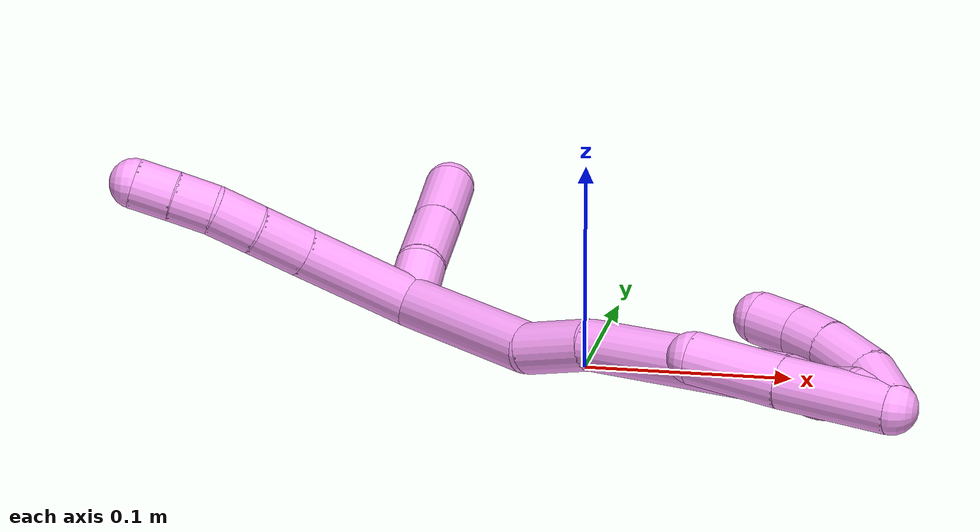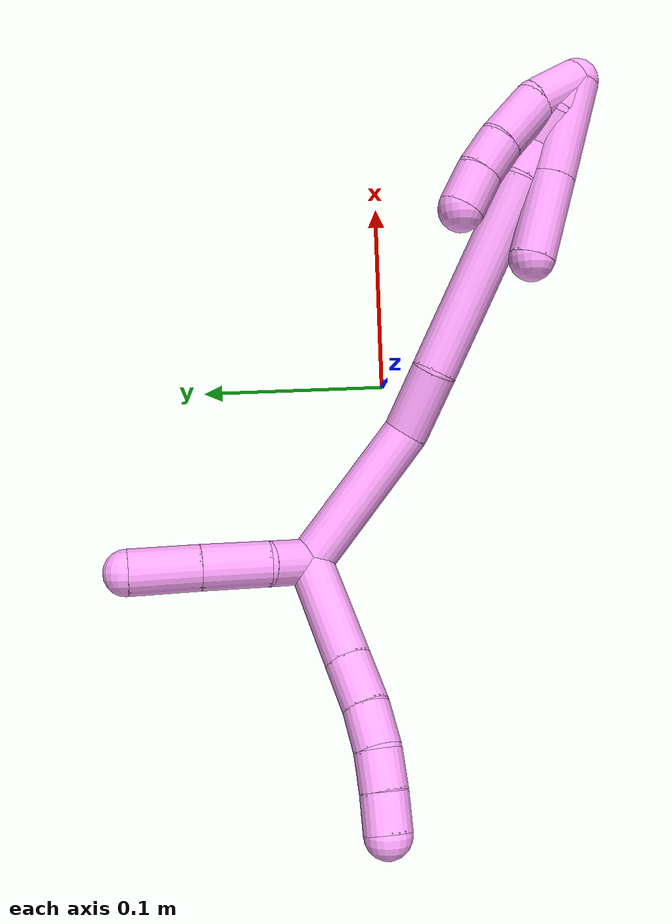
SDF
<sdf version="1.7">
 <world name="default">
  <model name="photoneo_s_sensor">
   <static>1</static>
   <pose>0 0 2 1.57079 1.57079 3.14159</pose>
   <link name="link">
    <inertial><mass>0.1</mass></inertial>
    <sensor name="sensor" type="depth">
     <update_rate>30</update_rate>
     <camera>
      <horizontal_fov>1.22</horizontal_fov>
      <image><width>1920</width><height>1200</height><format>B8G8R8</format></image>
      <clip><near>0.1</near><far>4</far></clip>
      <depth_camera><output>points</output></depth_camera>
     </camera>
     <plugin name="camera_plugin" filename="libgazebo_ros_depth_camera.so">
      <baseline>0.2</baseline>
      <alwaysOn>1</alwaysOn>
      <updateRate>0.0</updateRate>
      <cameraName>camera_ir</cameraName>
      <imageTopicName>/camera/color/image_raw</imageTopicName>
      <cameraInfoTopicName>/camera/color/camera_info</cameraInfoTopicName>
      <depthImageTopicName>/camera/depth/image_raw</depthImageTopicName>
      <depthImageCameraInfoTopicName>/camera/depth/camera_info</depthImageCameraInfoTopicName>
      <pointCloudTopicName>/camera/depth/points</pointCloudTopicName>
      <frameName>fr_optical</frameName>
      <pointCloudCutoff>0.1</pointCloudCutoff>
      <pointCloudCutoffMax>2.0</pointCloudCutoffMax>
      <distortionK1>0</distortionK1>
      <distortionK2>0</distortionK2>
      <distortionK3>0</distortionK3>
      <distortionT1>0</distortionT1>
      <distortionT2>0</distortionT2>
      <CxPrime>0</CxPrime>
      <Cx>0</Cx>
      <Cy>0</Cy>
      <focalLength>0</focalLength>
      <hackBaseline>0</hackBaseline>
     </plugin>
    </sensor>
   </link>
  </model>
  <model name="bin">
   <static>1</static>
   <link name="bottom">
    <collision name="collision-bottom">
     <pose>0 0 -0.01 0 -0 0</pose>
     <geometry><box><size>0.8 0.6 0.02</size></box></geometry>
     <surface>
      <friction><ode><mu>100</mu><mu2>100</mu2></ode></friction>
      <contact><collide_bitmask>65535</collide_bitmask></contact>
     </surface>
    </collision>
   </link>
   <link name="west_wall">
    <collision name="collision-west_wall">
     <pose>-0.41 0 0.1 0 -0 0</pose>
     <geometry><box><size>0.02 0.6 0.2</size></box></geometry>
     <surface>
      <friction><ode><mu>100</mu><mu2>100</mu2></ode></friction>
      <contact><collide_bitmask>65535</collide_bitmask></contact>
     </surface>
    </collision>
   </link>
   <link name="east_wall">
    <collision name="collision-east_wall">
     <pose>0.41 0 0.1 0 -0 0</pose>
     <geometry><box><size>0.02 0.6 0.2</size></box></geometry>
     <surface>
      <friction><ode><mu>100</mu><mu2>100</mu2></ode></friction>
      <contact><collide_bitmask>65535</collide_bitmask></contact>
     </surface>
    </collision>
   </link>
   <link name="south_wall">
    <collision name="collision-south_wall">
     <pose>0 -0.31 0.1 0 -0 0</pose>
     <geometry><box><size>0.8 0.02 0.2</size></box></geometry>
     <surface>
      <friction><ode><mu>100</mu><mu2>100</mu2></ode></friction>
      <contact><collide_bitmask>65535</collide_bitmask></contact>
     </surface>
    </collision>
   </link>
   <link name="north_wall">
    <collision name="collision-north_wall">
     <pose>0 0.31 0.1 0 -0 0</pose>
     <geometry><box><size>0.8 0.02 0.2</size></box></geometry>
     <surface>
      <friction><ode><mu>100</mu><mu2>100</mu2></ode></friction>
      <contact><collide_bitmask>65535</collide_bitmask></contact>
     </surface>
    </collision>
   </link>
  </model>
  <model name="4">
   <static>0</static>
   <link name="4">
    <collision name="collision-cylinder-e_1_2_8">
     <pose>0.01227 0.010678 0.025622 -0.39486 0.416206 -0.084429</pose>
     <geometry><cylinder><radius>0.0125</radius><length>0.060697</length></cylinder></geometry>
     <surface>
      <friction><ode><mu>1.16</mu><mu2>1.16</mu2><slip1>0</slip1><slip2>0</slip2></ode></friction>
      <contact><ode><kp>1e+06</kp><kd>1</kd><max_vel>0</max_vel><min_depth>0.001</min_depth></ode></contact>
     </surface>
    </collision>
    <visual name="visual-cylinder-e_1_2_8">
     <pose>0.01227 0.010678 0.025622 -0.39486 0.416206 -0.084429</pose>
     <geometry><cylinder><radius>0.0125</radius><length>0.060697</length></cylinder></geometry>
     <material><ambient>1 0.65098 0.996078 1</ambient></material>
    </visual>
    <collision name="collision-cylinder-e_2_8_9">
     <pose>0.029861 0.026027 0.062316 -0.399247 0.41689 -0.085535</pose>
     <geometry><cylinder><radius>0.0125</radius><length>0.026286</length></cylinder></geometry>
     <surface>
      <friction><ode><mu>1.16</mu><mu2>1.16</mu2><slip1>0</slip1><slip2>0</slip2></ode></friction>
      <contact><ode><kp>1e+06</kp><kd>1</kd><max_vel>0</max_vel><min_depth>0.001</min_depth></ode></contact>
     </surface>
    </collision>
    <visual name="visual-cylinder-e_2_8_9">
     <pose>0.029861 0.026027 0.062316 -0.399247 0.41689 -0.085535</pose>
     <geometry><cylinder><radius>0.0125</radius><length>0.026286</length></cylinder></geometry>
     <material><ambient>1 0.65098 0.996078 1</ambient></material>
    </visual>
    <collision name="collision-cylinder-e_3_9_10">
     <pose>0.038668 0.034615 0.083385 -0.373361 0.313869 -0.059757</pose>
     <geometry><cylinder><radius>0.0125</radius><length>0.022577</length></cylinder></geometry>
     <surface>
      <friction><ode><mu>1.16</mu><mu2>1.16</mu2><slip1>0</slip1><slip2>0</slip2></ode></friction>
      <contact><ode><kp>1e+06</kp><kd>1</kd><max_vel>0</max_vel><min_depth>0.001</min_depth></ode></contact>
     </surface>
    </collision>
    <visual name="visual-cylinder-e_3_9_10">
     <pose>0.038668 0.034615 0.083385 -0.373361 0.313869 -0.059757</pose>
     <geometry><cylinder><radius>0.0125</radius><length>0.022577</length></cylinder></geometry>
     <material><ambient>1 0.65098 0.996078 1</ambient></material>
    </visual>
    <collision name="collision-cylinder-e_4_10_11">
     <pose>0.043875 0.040868 0.103076 -0.236529 0.170971 -0.020364</pose>
     <geometry><cylinder><radius>0.0125</radius><length>0.020237</length></cylinder></geometry>
     <surface>
      <friction><ode><mu>1.16</mu><mu2>1.16</mu2><slip1>0</slip1><slip2>0</slip2></ode></friction>
      <contact><ode><kp>1e+06</kp><kd>1</kd><max_vel>0</max_vel><min_depth>0.001</min_depth></ode></contact>
     </surface>
    </collision>
    <visual name="visual-cylinder-e_4_10_11">
     <pose>0.043875 0.040868 0.103076 -0.236529 0.170971 -0.020364</pose>
     <geometry><cylinder><radius>0.0125</radius><length>0.020237</length></cylinder></geometry>
     <material><ambient>1 0.65098 0.996078 1</ambient></material>
    </visual>
    <collision name="collision-cylinder-e_5_11_6">
     <pose>0.046783 0.045295 0.122581 -0.209961 0.117728 -0.012419</pose>
     <geometry><cylinder><radius>0.0125</radius><length>0.020202</length></cylinder></geometry>
     <surface>
      <friction><ode><mu>1.16</mu><mu2>1.16</mu2><slip1>0</slip1><slip2>0</slip2></ode></friction>
      <contact><ode><kp>1e+06</kp><kd>1</kd><max_vel>0</max_vel><min_depth>0.001</min_depth></ode></contact>
     </surface>
    </collision>
    <visual name="visual-cylinder-e_5_11_6">
     <pose>0.046783 0.045295 0.122581 -0.209961 0.117728 -0.012419</pose>
     <geometry><cylinder><radius>0.0125</radius><length>0.020202</length></cylinder></geometry>
     <material><ambient>1 0.65098 0.996078 1</ambient></material>
    </visual>
    <collision name="collision-cylinder-e_1_2_12">
     <pose>-0.009496 0.007903 0.00024 -1.54039 -0.876455 0.853317</pose>
     <geometry><cylinder><radius>0.0125</radius><length>0.024713</length></cylinder></geometry>
     <surface>
      <friction><ode><mu>1.16</mu><mu2>1.16</mu2><slip1>0</slip1><slip2>0</slip2></ode></friction>
      <contact><ode><kp>1e+06</kp><kd>1</kd><max_vel>0</max_vel><min_depth>0.001</min_depth></ode></contact>
     </surface>
    </collision>
    <visual name="visual-cylinder-e_1_2_12">
     <pose>-0.009496 0.007903 0.00024 -1.54039 -0.876455 0.853317</pose>
     <geometry><cylinder><radius>0.0125</radius><length>0.024713</length></cylinder></geometry>
     <material><ambient>1 0.65098 0.996078 1</ambient></material>
    </visual>
    <collision name="collision-cylinder-e_2_12_13">
     <pose>-0.035815 0.023728 0.000991 -1.50648 -1.1299 1.07252</pose>
     <geometry><cylinder><radius>0.0125</radius><length>0.037205</length></cylinder></geometry>
     <surface>
      <friction><ode><mu>1.16</mu><mu2>1.16</mu2><slip1>0</slip1><slip2>0</slip2></ode></friction>
      <contact><ode><kp>1e+06</kp><kd>1</kd><max_vel>0</max_vel><min_depth>0.001</min_depth></ode></contact>
     </surface>
    </collision>
    <visual name="visual-cylinder-e_2_12_13">
     <pose>-0.035815 0.023728 0.000991 -1.50648 -1.1299 1.07252</pose>
     <geometry><cylinder><radius>0.0125</radius><length>0.037205</length></cylinder></geometry>
     <material><ambient>1 0.65098 0.996078 1</ambient></material>
    </visual>
    <collision name="collision-cylinder-e_3_13_5">
     <pose>-0.069877 0.039696 0.002297 -1.4722 -1.13226 1.04481</pose>
     <geometry><cylinder><radius>0.0125</radius><length>0.038083</length></cylinder></geometry>
     <surface>
      <friction><ode><mu>1.16</mu><mu2>1.16</mu2><slip1>0</slip1><slip2>0</slip2></ode></friction>
      <contact><ode><kp>1e+06</kp><kd>1</kd><max_vel>0</max_vel><min_depth>0.001</min_depth></ode></contact>
     </surface>
    </collision>
    <visual name="visual-cylinder-e_3_13_5">
     <pose>-0.069877 0.039696 0.002297 -1.4722 -1.13226 1.04481</pose>
     <geometry><cylinder><radius>0.0125</radius><length>0.038083</length></cylinder></geometry>
     <material><ambient>1 0.65098 0.996078 1</ambient></material>
    </visual>
    <collision name="collision-cylinder-e_1_2_14">
     <pose>0.026822 -0.003454 -0.034937 3.04305 0.652412 2.85209</pose>
     <geometry><cylinder><radius>0.0125</radius><length>0.088361</length></cylinder></geometry>
     <surface>
      <friction><ode><mu>1.16</mu><mu2>1.16</mu2><slip1>0</slip1><slip2>0</slip2></ode></friction>
      <contact><ode><kp>1e+06</kp><kd>1</kd><max_vel>0</max_vel><min_depth>0.001</min_depth></ode></contact>
     </surface>
    </collision>
    <visual name="visual-cylinder-e_1_2_14">
     <pose>0.026822 -0.003454 -0.034937 3.04305 0.652412 2.85209</pose>
     <geometry><cylinder><radius>0.0125</radius><length>0.088361</length></cylinder></geometry>
     <material><ambient>1 0.65098 0.996078 1</ambient></material>
    </visual>
    <collision name="collision-cylinder-e_2_14_15">
     <pose>0.062288 -0.002712 -0.086024 -2.8874 0.477891 -2.17538</pose>
     <geometry><cylinder><radius>0.0125</radius><length>0.037585</length></cylinder></geometry>
     <surface>
      <friction><ode><mu>1.16</mu><mu2>1.16</mu2><slip1>0</slip1><slip2>0</slip2></ode></friction>
      <contact><ode><kp>1e+06</kp><kd>1</kd><max_vel>0</max_vel><min_depth>0.001</min_depth></ode></contact>
     </surface>
    </collision>
    <visual name="visual-cylinder-e_2_14_15">
     <pose>0.062288 -0.002712 -0.086024 -2.8874 0.477891 -2.17538</pose>
     <geometry><cylinder><radius>0.0125</radius><length>0.037585</length></cylinder></geometry>
     <material><ambient>1 0.65098 0.996078 1</ambient></material>
    </visual>
    <collision name="collision-cylinder-e_3_15_16">
     <pose>0.096029 0.003263 -0.152843 -3.1065 0.459678 -2.99185</pose>
     <geometry><cylinder><radius>0.0125</radius><length>0.113141</length></cylinder></geometry>
     <surface>
      <friction><ode><mu>1.16</mu><mu2>1.16</mu2><slip1>0</slip1><slip2>0</slip2></ode></friction>
      <contact><ode><kp>1e+06</kp><kd>1</kd><max_vel>0</max_vel><min_depth>0.001</min_depth></ode></contact>
     </surface>
    </collision>
    <visual name="visual-cylinder-e_3_15_16">
     <pose>0.096029 0.003263 -0.152843 -3.1065 0.459678 -2.99185</pose>
     <geometry><cylinder><radius>0.0125</radius><length>0.113141</length></cylinder></geometry>
     <material><ambient>1 0.65098 0.996078 1</ambient></material>
    </visual>
    <collision name="collision-cylinder-e_4_16_17">
     <pose>0.126361 0.003849 -0.212151 3.00443 0.540409 2.65541</pose>
     <geometry><cylinder><radius>0.0125</radius><length>0.020346</length></cylinder></geometry>
     <surface>
      <friction><ode><mu>1.16</mu><mu2>1.16</mu2><slip1>0</slip1><slip2>0</slip2></ode></friction>
      <contact><ode><kp>1e+06</kp><kd>1</kd><max_vel>0</max_vel><min_depth>0.001</min_depth></ode></contact>
     </surface>
    </collision>
    <visual name="visual-cylinder-e_4_16_17">
     <pose>0.126361 0.003849 -0.212151 3.00443 0.540409 2.65541</pose>
     <geometry><cylinder><radius>0.0125</radius><length>0.020346</length></cylinder></geometry>
     <material><ambient>1 0.65098 0.996078 1</ambient></material>
    </visual>
    <collision name="collision-cylinder-e_5_17_18">
     <pose>0.136284 0.004427 -0.229744 -2.94635 0.474721 -2.37231</pose>
     <geometry><cylinder><radius>0.0125</radius><length>0.020518</length></cylinder></geometry>
     <surface>
      <friction><ode><mu>1.16</mu><mu2>1.16</mu2><slip1>0</slip1><slip2>0</slip2></ode></friction>
      <contact><ode><kp>1e+06</kp><kd>1</kd><max_vel>0</max_vel><min_depth>0.001</min_depth></ode></contact>
     </surface>
    </collision>
    <visual name="visual-cylinder-e_5_17_18">
     <pose>0.136284 0.004427 -0.229744 -2.94635 0.474721 -2.37231</pose>
     <geometry><cylinder><radius>0.0125</radius><length>0.020518</length></cylinder></geometry>
     <material><ambient>1 0.65098 0.996078 1</ambient></material>
    </visual>
    <collision name="collision-cylinder-e_6_18_1">
     <pose>0.145905 0.004727 -0.247297 2.97238 0.51439 2.51777</pose>
     <geometry><cylinder><radius>0.0125</radius><length>0.020048</length></cylinder></geometry>
     <surface>
      <friction><ode><mu>1.16</mu><mu2>1.16</mu2><slip1>0</slip1><slip2>0</slip2></ode></friction>
      <contact><ode><kp>1e+06</kp><kd>1</kd><max_vel>0</max_vel><min_depth>0.001</min_depth></ode></contact>
     </surface>
    </collision>
    <visual name="visual-cylinder-e_6_18_1">
     <pose>0.145905 0.004727 -0.247297 2.97238 0.51439 2.51777</pose>
     <geometry><cylinder><radius>0.0125</radius><length>0.020048</length></cylinder></geometry>
     <material><ambient>1 0.65098 0.996078 1</ambient></material>
    </visual>
    <collision name="collision-cylinder-e_1_1_19">
     <pose>0.14388 0.004716 -0.229612 -0.055412 -0.258342 0.007199</pose>
     <geometry><cylinder><radius>0.0125</radius><length>0.054463</length></cylinder></geometry>
     <surface>
      <friction><ode><mu>1.16</mu><mu2>1.16</mu2><slip1>0</slip1><slip2>0</slip2></ode></friction>
      <contact><ode><kp>1e+06</kp><kd>1</kd><max_vel>0</max_vel><min_depth>0.001</min_depth></ode></contact>
     </surface>
    </collision>
    <visual name="visual-cylinder-e_1_1_19">
     <pose>0.14388 0.004716 -0.229612 -0.055412 -0.258342 0.007199</pose>
     <geometry><cylinder><radius>0.0125</radius><length>0.054463</length></cylinder></geometry>
     <material><ambient>1 0.65098 0.996078 1</ambient></material>
    </visual>
    <collision name="collision-cylinder-e_2_19_4">
     <pose>0.131116 0.008223 -0.181404 -0.093199 -0.257872 0.012092</pose>
     <geometry><cylinder><radius>0.0125</radius><length>0.045537</length></cylinder></geometry>
     <surface>
      <friction><ode><mu>1.16</mu><mu2>1.16</mu2><slip1>0</slip1><slip2>0</slip2></ode></friction>
      <contact><ode><kp>1e+06</kp><kd>1</kd><max_vel>0</max_vel><min_depth>0.001</min_depth></ode></contact>
     </surface>
    </collision>
    <visual name="visual-cylinder-e_2_19_4">
     <pose>0.131116 0.008223 -0.181404 -0.093199 -0.257872 0.012092</pose>
     <geometry><cylinder><radius>0.0125</radius><length>0.045537</length></cylinder></geometry>
     <material><ambient>1 0.65098 0.996078 1</ambient></material>
    </visual>
    <collision name="collision-cylinder-e_1_1_20">
     <pose>0.139949 0.008583 -0.249038 -0.660076 -0.897461 0.326942</pose>
     <geometry><cylinder><radius>0.0125</radius><length>0.027856</length></cylinder></geometry>
     <surface>
      <friction><ode><mu>1.16</mu><mu2>1.16</mu2><slip1>0</slip1><slip2>0</slip2></ode></friction>
      <contact><ode><kp>1e+06</kp><kd>1</kd><max_vel>0</max_vel><min_depth>0.001</min_depth></ode></contact>
     </surface>
    </collision>
    <visual name="visual-cylinder-e_1_1_20">
     <pose>0.139949 0.008583 -0.249038 -0.660076 -0.897461 0.326942</pose>
     <geometry><cylinder><radius>0.0125</radius><length>0.027856</length></cylinder></geometry>
     <material><ambient>1 0.65098 0.996078 1</ambient></material>
    </visual>
    <collision name="collision-cylinder-e_2_20_21">
     <pose>0.11992 0.017715 -0.231149 -0.332335 -0.664609 0.115628</pose>
     <geometry><cylinder><radius>0.0125</radius><length>0.029641</length></cylinder></geometry>
     <surface>
      <friction><ode><mu>1.16</mu><mu2>1.16</mu2><slip1>0</slip1><slip2>0</slip2></ode></friction>
      <contact><ode><kp>1e+06</kp><kd>1</kd><max_vel>0</max_vel><min_depth>0.001</min_depth></ode></contact>
     </surface>
    </collision>
    <visual name="visual-cylinder-e_2_20_21">
     <pose>0.11992 0.017715 -0.231149 -0.332335 -0.664609 0.115628</pose>
     <geometry><cylinder><radius>0.0125</radius><length>0.029641</length></cylinder></geometry>
     <material><ambient>1 0.65098 0.996078 1</ambient></material>
    </visual>
    <collision name="collision-cylinder-e_3_21_22">
     <pose>0.105124 0.023183 -0.2118 -0.197109 -0.587859 0.05984</pose>
     <geometry><cylinder><radius>0.0125</radius><length>0.020394</length></cylinder></geometry>
     <surface>
      <friction><ode><mu>1.16</mu><mu2>1.16</mu2><slip1>0</slip1><slip2>0</slip2></ode></friction>
      <contact><ode><kp>1e+06</kp><kd>1</kd><max_vel>0</max_vel><min_depth>0.001</min_depth></ode></contact>
     </surface>
    </collision>
    <visual name="visual-cylinder-e_3_21_22">
     <pose>0.105124 0.023183 -0.2118 -0.197109 -0.587859 0.05984</pose>
     <geometry><cylinder><radius>0.0125</radius><length>0.020394</length></cylinder></geometry>
     <material><ambient>1 0.65098 0.996078 1</ambient></material>
    </visual>
    <collision name="collision-cylinder-e_4_22_3">
     <pose>0.094624 0.02618 -0.193634 -0.134756 -0.453742 0.031152</pose>
     <geometry><cylinder><radius>0.0125</radius><length>0.022109</length></cylinder></geometry>
     <surface>
      <friction><ode><mu>1.16</mu><mu2>1.16</mu2><slip1>0</slip1><slip2>0</slip2></ode></friction>
      <contact><ode><kp>1e+06</kp><kd>1</kd><max_vel>0</max_vel><min_depth>0.001</min_depth></ode></contact>
     </surface>
    </collision>
    <visual name="visual-cylinder-e_4_22_3">
     <pose>0.094624 0.02618 -0.193634 -0.134756 -0.453742 0.031152</pose>
     <geometry><cylinder><radius>0.0125</radius><length>0.022109</length></cylinder></geometry>
     <material><ambient>1 0.65098 0.996078 1</ambient></material>
    </visual>
    <collision name="collision-sphere-3">
     <pose>0.089778 0.027515 -0.183788 0 -0 0</pose>
     <geometry><sphere><radius>0.0125</radius></sphere></geometry>
     <surface>
      <friction><ode><mu>1.16</mu><mu2>1.16</mu2><slip1>0</slip1><slip2>0</slip2></ode></friction>
      <contact><ode><kp>1e+06</kp><kd>1</kd><max_vel>0</max_vel><min_depth>0.001</min_depth></ode></contact>
     </surface>
    </collision>
    <visual name="visual-sphere-3">
     <pose>0.089778 0.027515 -0.183788 0 -0 0</pose>
     <geometry><sphere><radius>0.0125</radius></sphere></geometry>
     <material><ambient>1 0.65098 0.996078 1</ambient></material>
    </visual>
    <collision name="collision-sphere-22">
     <pose>0.099469 0.024845 -0.20348 0 -0 0</pose>
     <geometry><sphere><radius>0.0125</radius></sphere></geometry>
     <surface>
      <friction><ode><mu>1.16</mu><mu2>1.16</mu2><slip1>0</slip1><slip2>0</slip2></ode></friction>
      <contact><ode><kp>1e+06</kp><kd>1</kd><max_vel>0</max_vel><min_depth>0.001</min_depth></ode></contact>
     </surface>
    </collision>
    <visual name="visual-sphere-22">
     <pose>0.099469 0.024845 -0.20348 0 -0 0</pose>
     <geometry><sphere><radius>0.0125</radius></sphere></geometry>
     <material><ambient>1 0.65098 0.996078 1</ambient></material>
    </visual>
    <collision name="collision-sphere-21">
     <pose>0.110779 0.021521 -0.220121 0 -0 0</pose>
     <geometry><sphere><radius>0.0125</radius></sphere></geometry>
     <surface>
      <friction><ode><mu>1.16</mu><mu2>1.16</mu2><slip1>0</slip1><slip2>0</slip2></ode></friction>
      <contact><ode><kp>1e+06</kp><kd>1</kd><max_vel>0</max_vel><min_depth>0.001</min_depth></ode></contact>
     </surface>
    </collision>
    <visual name="visual-sphere-21">
     <pose>0.110779 0.021521 -0.220121 0 -0 0</pose>
     <geometry><sphere><radius>0.0125</radius></sphere></geometry>
     <material><ambient>1 0.65098 0.996078 1</ambient></material>
    </visual>
    <collision name="collision-sphere-20">
     <pose>0.12906 0.013909 -0.242177 0 -0 0</pose>
     <geometry><sphere><radius>0.0125</radius></sphere></geometry>
     <surface>
      <friction><ode><mu>1.16</mu><mu2>1.16</mu2><slip1>0</slip1><slip2>0</slip2></ode></friction>
      <contact><ode><kp>1e+06</kp><kd>1</kd><max_vel>0</max_vel><min_depth>0.001</min_depth></ode></contact>
     </surface>
    </collision>
    <visual name="visual-sphere-20">
     <pose>0.12906 0.013909 -0.242177 0 -0 0</pose>
     <geometry><sphere><radius>0.0125</radius></sphere></geometry>
     <material><ambient>1 0.65098 0.996078 1</ambient></material>
    </visual>
    <collision name="collision-sphere-4">
     <pose>0.12531 0.010272 -0.159484 0 -0 0</pose>
     <geometry><sphere><radius>0.0125</radius></sphere></geometry>
     <surface>
      <friction><ode><mu>1.16</mu><mu2>1.16</mu2><slip1>0</slip1><slip2>0</slip2></ode></friction>
      <contact><ode><kp>1e+06</kp><kd>1</kd><max_vel>0</max_vel><min_depth>0.001</min_depth></ode></contact>
     </surface>
    </collision>
    <visual name="visual-sphere-4">
     <pose>0.12531 0.010272 -0.159484 0 -0 0</pose>
     <geometry><sphere><radius>0.0125</radius></sphere></geometry>
     <material><ambient>1 0.65098 0.996078 1</ambient></material>
    </visual>
    <collision name="collision-sphere-6">
     <pose>0.04797 0.047386 0.132392 0 -0 0</pose>
     <geometry><sphere><radius>0.0125</radius></sphere></geometry>
     <surface>
      <friction><ode><mu>1.16</mu><mu2>1.16</mu2><slip1>0</slip1><slip2>0</slip2></ode></friction>
      <contact><ode><kp>1e+06</kp><kd>1</kd><max_vel>0</max_vel><min_depth>0.001</min_depth></ode></contact>
     </surface>
    </collision>
    <visual name="visual-sphere-6">
     <pose>0.04797 0.047386 0.132392 0 -0 0</pose>
     <geometry><sphere><radius>0.0125</radius></sphere></geometry>
     <material><ambient>1 0.65098 0.996078 1</ambient></material>
    </visual>
    <collision name="collision-sphere-11">
     <pose>0.045597 0.043204 0.11277 0 -0 0</pose>
     <geometry><sphere><radius>0.0125</radius></sphere></geometry>
     <surface>
      <friction><ode><mu>1.16</mu><mu2>1.16</mu2><slip1>0</slip1><slip2>0</slip2></ode></friction>
      <contact><ode><kp>1e+06</kp><kd>1</kd><max_vel>0</max_vel><min_depth>0.001</min_depth></ode></contact>
     </surface>
    </collision>
    <visual name="visual-sphere-11">
     <pose>0.045597 0.043204 0.11277 0 -0 0</pose>
     <geometry><sphere><radius>0.0125</radius></sphere></geometry>
     <material><ambient>1 0.65098 0.996078 1</ambient></material>
    </visual>
    <collision name="collision-sphere-10">
     <pose>0.042154 0.038531 0.093383 0 -0 0</pose>
     <geometry><sphere><radius>0.0125</radius></sphere></geometry>
     <surface>
      <friction><ode><mu>1.16</mu><mu2>1.16</mu2><slip1>0</slip1><slip2>0</slip2></ode></friction>
      <contact><ode><kp>1e+06</kp><kd>1</kd><max_vel>0</max_vel><min_depth>0.001</min_depth></ode></contact>
     </surface>
    </collision>
    <visual name="visual-sphere-10">
     <pose>0.042154 0.038531 0.093383 0 -0 0</pose>
     <geometry><sphere><radius>0.0125</radius></sphere></geometry>
     <material><ambient>1 0.65098 0.996078 1</ambient></material>
    </visual>
    <collision name="collision-sphere-9">
     <pose>0.035183 0.030698 0.073388 0 -0 0</pose>
     <geometry><sphere><radius>0.0125</radius></sphere></geometry>
     <surface>
      <friction><ode><mu>1.16</mu><mu2>1.16</mu2><slip1>0</slip1><slip2>0</slip2></ode></friction>
      <contact><ode><kp>1e+06</kp><kd>1</kd><max_vel>0</max_vel><min_depth>0.001</min_depth></ode></contact>
     </surface>
    </collision>
    <visual name="visual-sphere-9">
     <pose>0.035183 0.030698 0.073388 0 -0 0</pose>
     <geometry><sphere><radius>0.0125</radius></sphere></geometry>
     <material><ambient>1 0.65098 0.996078 1</ambient></material>
    </visual>
    <collision name="collision-sphere-2">
     <geometry><sphere><radius>0.0125</radius></sphere></geometry>
     <surface>
      <friction><ode><mu>1.16</mu><mu2>1.16</mu2><slip1>0</slip1><slip2>0</slip2></ode></friction>
      <contact><ode><kp>1e+06</kp><kd>1</kd><max_vel>0</max_vel><min_depth>0.001</min_depth></ode></contact>
     </surface>
    </collision>
    <visual name="visual-sphere-2">
     <geometry><sphere><radius>0.0125</radius></sphere></geometry>
     <material><ambient>1 0.65098 0.996078 1</ambient></material>
    </visual>
    <collision name="collision-sphere-19">
     <pose>0.136923 0.006174 -0.203324 0 -0 0</pose>
     <geometry><sphere><radius>0.0125</radius></sphere></geometry>
     <surface>
      <friction><ode><mu>1.16</mu><mu2>1.16</mu2><slip1>0</slip1><slip2>0</slip2></ode></friction>
      <contact><ode><kp>1e+06</kp><kd>1</kd><max_vel>0</max_vel><min_depth>0.001</min_depth></ode></contact>
     </surface>
    </collision>
    <visual name="visual-sphere-19">
     <pose>0.136923 0.006174 -0.203324 0 -0 0</pose>
     <geometry><sphere><radius>0.0125</radius></sphere></geometry>
     <material><ambient>1 0.65098 0.996078 1</ambient></material>
    </visual>
    <collision name="collision-sphere-8">
     <pose>0.024539 0.021355 0.051243 0 -0 0</pose>
     <geometry><sphere><radius>0.0125</radius></sphere></geometry>
     <surface>
      <friction><ode><mu>1.16</mu><mu2>1.16</mu2><slip1>0</slip1><slip2>0</slip2></ode></friction>
      <contact><ode><kp>1e+06</kp><kd>1</kd><max_vel>0</max_vel><min_depth>0.001</min_depth></ode></contact>
     </surface>
    </collision>
    <visual name="visual-sphere-8">
     <pose>0.024539 0.021355 0.051243 0 -0 0</pose>
     <geometry><sphere><radius>0.0125</radius></sphere></geometry>
     <material><ambient>1 0.65098 0.996078 1</ambient></material>
    </visual>
    <collision name="collision-sphere-12">
     <pose>-0.018991 0.015806 0.000481 0 -0 0</pose>
     <geometry><sphere><radius>0.0125</radius></sphere></geometry>
     <surface>
      <friction><ode><mu>1.16</mu><mu2>1.16</mu2><slip1>0</slip1><slip2>0</slip2></ode></friction>
      <contact><ode><kp>1e+06</kp><kd>1</kd><max_vel>0</max_vel><min_depth>0.001</min_depth></ode></contact>
     </surface>
    </collision>
    <visual name="visual-sphere-12">
     <pose>-0.018991 0.015806 0.000481 0 -0 0</pose>
     <geometry><sphere><radius>0.0125</radius></sphere></geometry>
     <material><ambient>1 0.65098 0.996078 1</ambient></material>
    </visual>
    <collision name="collision-sphere-13">
     <pose>-0.052638 0.03165 0.001501 0 -0 0</pose>
     <geometry><sphere><radius>0.0125</radius></sphere></geometry>
     <surface>
      <friction><ode><mu>1.16</mu><mu2>1.16</mu2><slip1>0</slip1><slip2>0</slip2></ode></friction>
      <contact><ode><kp>1e+06</kp><kd>1</kd><max_vel>0</max_vel><min_depth>0.001</min_depth></ode></contact>
     </surface>
    </collision>
    <visual name="visual-sphere-13">
     <pose>-0.052638 0.03165 0.001501 0 -0 0</pose>
     <geometry><sphere><radius>0.0125</radius></sphere></geometry>
     <material><ambient>1 0.65098 0.996078 1</ambient></material>
    </visual>
    <collision name="collision-sphere-5">
     <pose>-0.087117 0.047742 0.003093 0 -0 0</pose>
     <geometry><sphere><radius>0.0125</radius></sphere></geometry>
     <surface>
      <friction><ode><mu>1.16</mu><mu2>1.16</mu2><slip1>0</slip1><slip2>0</slip2></ode></friction>
      <contact><ode><kp>1e+06</kp><kd>1</kd><max_vel>0</max_vel><min_depth>0.001</min_depth></ode></contact>
     </surface>
    </collision>
    <visual name="visual-sphere-5">
     <pose>-0.087117 0.047742 0.003093 0 -0 0</pose>
     <geometry><sphere><radius>0.0125</radius></sphere></geometry>
     <material><ambient>1 0.65098 0.996078 1</ambient></material>
    </visual>
    <collision name="collision-sphere-14">
     <pose>0.053645 -0.006908 -0.069873 0 -0 0</pose>
     <geometry><sphere><radius>0.0125</radius></sphere></geometry>
     <surface>
      <friction><ode><mu>1.16</mu><mu2>1.16</mu2><slip1>0</slip1><slip2>0</slip2></ode></friction>
      <contact><ode><kp>1e+06</kp><kd>1</kd><max_vel>0</max_vel><min_depth>0.001</min_depth></ode></contact>
     </surface>
    </collision>
    <visual name="visual-sphere-14">
     <pose>0.053645 -0.006908 -0.069873 0 -0 0</pose>
     <geometry><sphere><radius>0.0125</radius></sphere></geometry>
     <material><ambient>1 0.65098 0.996078 1</ambient></material>
    </visual>
    <collision name="collision-sphere-15">
     <pose>0.07093 0.001484 -0.102175 0 -0 0</pose>
     <geometry><sphere><radius>0.0125</radius></sphere></geometry>
     <surface>
      <friction><ode><mu>1.16</mu><mu2>1.16</mu2><slip1>0</slip1><slip2>0</slip2></ode></friction>
      <contact><ode><kp>1e+06</kp><kd>1</kd><max_vel>0</max_vel><min_depth>0.001</min_depth></ode></contact>
     </surface>
    </collision>
    <visual name="visual-sphere-15">
     <pose>0.07093 0.001484 -0.102175 0 -0 0</pose>
     <geometry><sphere><radius>0.0125</radius></sphere></geometry>
     <material><ambient>1 0.65098 0.996078 1</ambient></material>
    </visual>
    <collision name="collision-sphere-16">
     <pose>0.121127 0.005042 -0.20351 0 -0 0</pose>
     <geometry><sphere><radius>0.0125</radius></sphere></geometry>
     <surface>
      <friction><ode><mu>1.16</mu><mu2>1.16</mu2><slip1>0</slip1><slip2>0</slip2></ode></friction>
      <contact><ode><kp>1e+06</kp><kd>1</kd><max_vel>0</max_vel><min_depth>0.001</min_depth></ode></contact>
     </surface>
    </collision>
    <visual name="visual-sphere-16">
     <pose>0.121127 0.005042 -0.20351 0 -0 0</pose>
     <geometry><sphere><radius>0.0125</radius></sphere></geometry>
     <material><ambient>1 0.65098 0.996078 1</ambient></material>
    </visual>
    <collision name="collision-sphere-17">
     <pose>0.131595 0.002657 -0.220793 0 -0 0</pose>
     <geometry><sphere><radius>0.0125</radius></sphere></geometry>
     <surface>
      <friction><ode><mu>1.16</mu><mu2>1.16</mu2><slip1>0</slip1><slip2>0</slip2></ode></friction>
      <contact><ode><kp>1e+06</kp><kd>1</kd><max_vel>0</max_vel><min_depth>0.001</min_depth></ode></contact>
     </surface>
    </collision>
    <visual name="visual-sphere-17">
     <pose>0.131595 0.002657 -0.220793 0 -0 0</pose>
     <geometry><sphere><radius>0.0125</radius></sphere></geometry>
     <material><ambient>1 0.65098 0.996078 1</ambient></material>
    </visual>
    <collision name="collision-sphere-18">
     <pose>0.140973 0.006197 -0.238695 0 -0 0</pose>
     <geometry><sphere><radius>0.0125</radius></sphere></geometry>
     <surface>
      <friction><ode><mu>1.16</mu><mu2>1.16</mu2><slip1>0</slip1><slip2>0</slip2></ode></friction>
      <contact><ode><kp>1e+06</kp><kd>1</kd><max_vel>0</max_vel><min_depth>0.001</min_depth></ode></contact>
     </surface>
    </collision>
    <visual name="visual-sphere-18">
     <pose>0.140973 0.006197 -0.238695 0 -0 0</pose>
     <geometry><sphere><radius>0.0125</radius></sphere></geometry>
     <material><ambient>1 0.65098 0.996078 1</ambient></material>
    </visual>
    <collision name="collision-sphere-1">
     <pose>0.150837 0.003258 -0.255899 0 -0 0</pose>
     <geometry><sphere><radius>0.0125</radius></sphere></geometry>
     <surface>
      <friction><ode><mu>1.16</mu><mu2>1.16</mu2><slip1>0</slip1><slip2>0</slip2></ode></friction>
      <contact><ode><kp>1e+06</kp><kd>1</kd><max_vel>0</max_vel><min_depth>0.001</min_depth></ode></contact>
     </surface>
    </collision>
    <visual name="visual-sphere-1">
     <pose>0.150837 0.003258 -0.255899 0 -0 0</pose>
     <geometry><sphere><radius>0.0125</radius></sphere></geometry>
     <material><ambient>1 0.65098 0.996078 1</ambient></material>
    </visual>
    <inertial>
     <pose>0.065828 0.012158 -0.09465 0 -0 0</pose>
     <mass>0.75</mass>
     <inertia>
      <ixx>-0.000102</ixx>
      <ixy>0</ixy>
      <ixz>0</ixz>
      <iyy>0.000271</iyy>
      <iyz>0</iyz>
      <izz>-0.0001</izz>
     </inertia>
    </inertial>
   </link>
   <pose>-0.094421 0.043717 0.01389 1.50028 -0.173084 -1.57865</pose>
  </model>
 </world>
</sdf>
